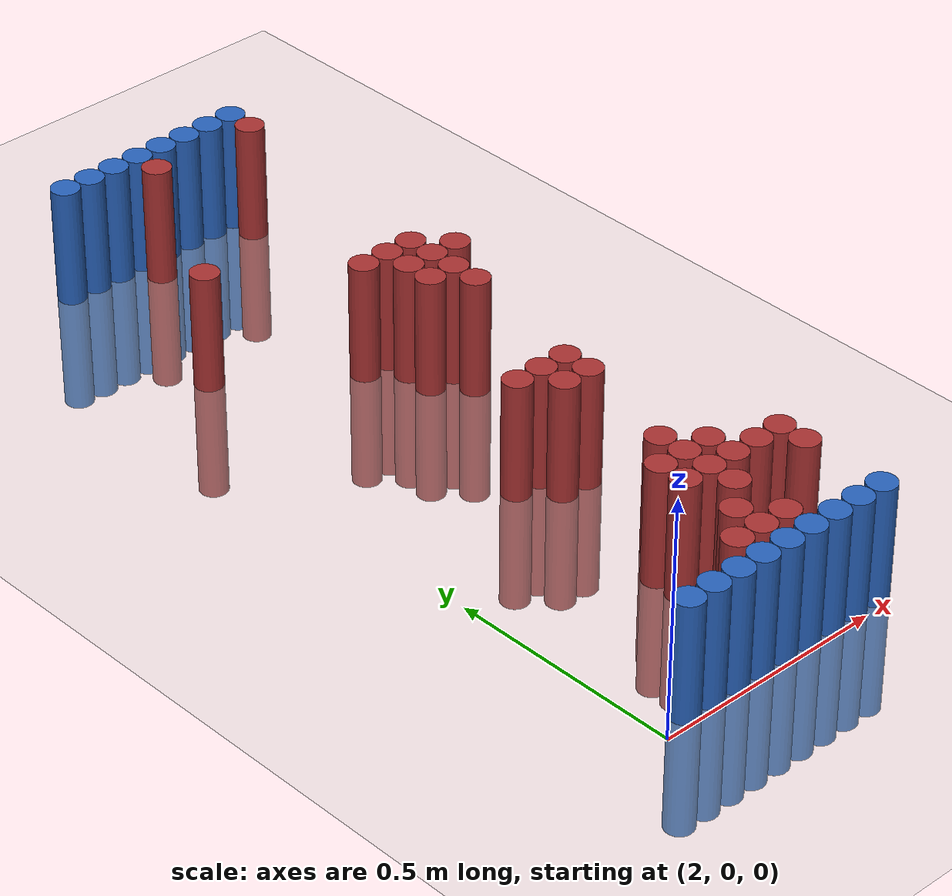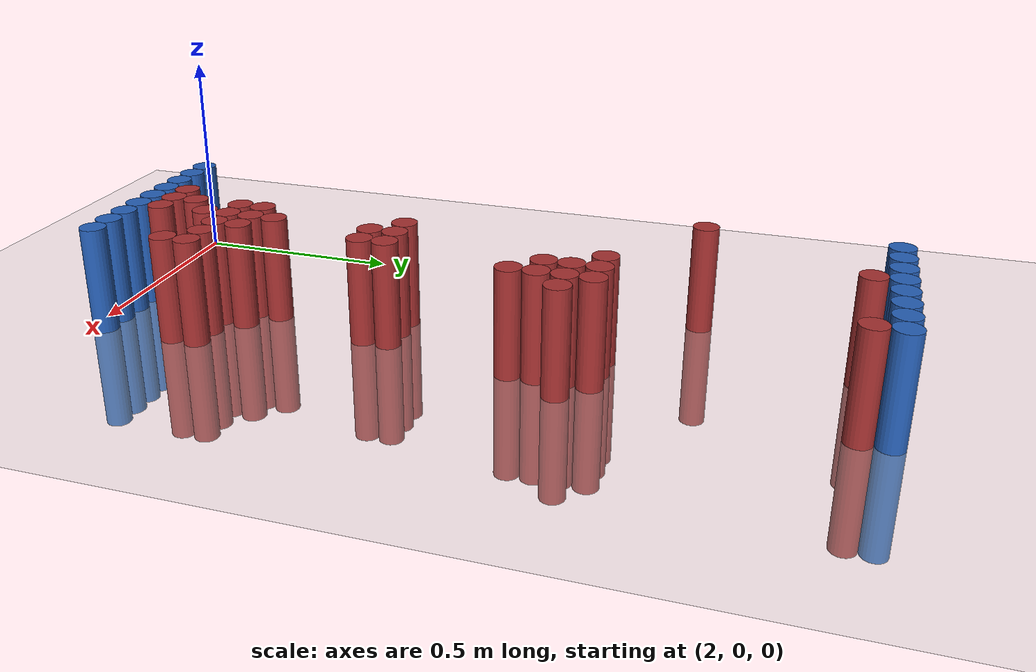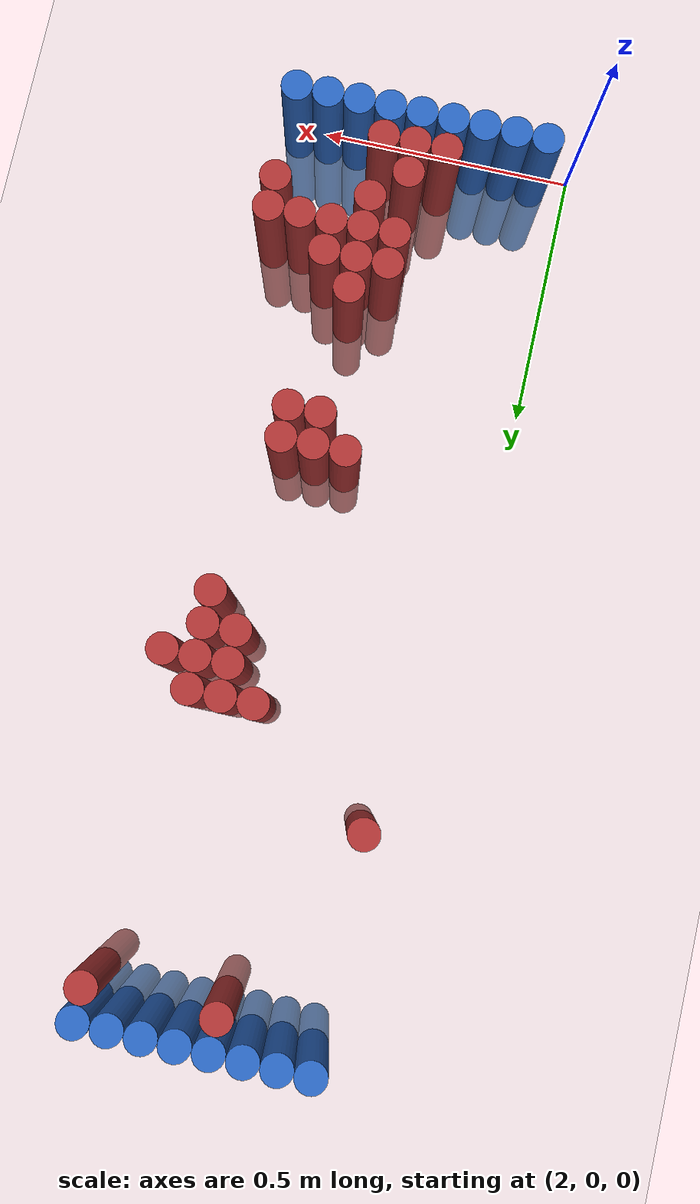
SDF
<sdf version="1.6">
 <world name="default">
  <model name="ground_plane">
   <static>1</static>
   <link name="link">
    <collision name="collision">
     <geometry><plane><normal>0 0 1</normal><size>100 100</size></plane></geometry>
     <surface><friction><ode><mu>100</mu><mu2>50</mu2></ode></friction></surface>
    </collision>
    <visual name="visual">
     <cast_shadows>0</cast_shadows>
     <geometry><plane><normal>0 0 1</normal><size>100 100</size></plane></geometry>
     <material>
      <script><uri>file://media/materials/scripts/gazebo.material</uri><name>Gazebo/Grey</name></script>
     </material>
    </visual>
   </link>
  </model>
  <model name="unit_cylinder_96">
   <static>1</static>
   <pose>2.130000 1.770000 0.000000 0.000000 0.000000 0.000000</pose>
   <link name="link">
    <inertial>
     <mass>1</mass>
     <inertia><ixx>0.145833</ixx><ixy>0</ixy><ixz>0</ixz><iyy>0.145833</iyy><iyz>0</iyz><izz>0.125</izz></inertia>
    </inertial>
    <collision name="collision">
     <geometry><cylinder><radius>0.030000</radius><length>0.5</length></cylinder></geometry>
    </collision>
    <visual name="visual">
     <geometry><cylinder><radius>0.030000</radius><length>0.5</length></cylinder></geometry>
     <material>
      <ambient>0.152000 0.379000 0.720000 1</ambient>
      <diffuse>0.152000 0.379000 0.720000 1</diffuse>
     </material>
     <material>
      <script><name>Gazebo/Grey</name><uri>file://media/materials/scripts/gazebo.material</uri></script>
     </material>
    </visual>
   </link>
  </model>
  <model name="unit_cylinder_97">
   <static>1</static>
   <pose>2.190000 1.770000 0.000000 0.000000 0.000000 0.000000</pose>
   <link name="link">
    <inertial>
     <mass>1</mass>
     <inertia><ixx>0.145833</ixx><ixy>0</ixy><ixz>0</ixz><iyy>0.145833</iyy><iyz>0</iyz><izz>0.125</izz></inertia>
    </inertial>
    <collision name="collision">
     <geometry><cylinder><radius>0.030000</radius><length>0.5</length></cylinder></geometry>
    </collision>
    <visual name="visual">
     <geometry><cylinder><radius>0.030000</radius><length>0.5</length></cylinder></geometry>
     <material>
      <ambient>0.152000 0.379000 0.720000 1</ambient>
      <diffuse>0.152000 0.379000 0.720000 1</diffuse>
     </material>
     <material>
      <script><name>Gazebo/Grey</name><uri>file://media/materials/scripts/gazebo.material</uri></script>
     </material>
    </visual>
   </link>
  </model>
  <model name="unit_cylinder_98">
   <static>1</static>
   <pose>2.250000 1.770000 0.000000 0.000000 0.000000 0.000000</pose>
   <link name="link">
    <inertial>
     <mass>1</mass>
     <inertia><ixx>0.145833</ixx><ixy>0</ixy><ixz>0</ixz><iyy>0.145833</iyy><iyz>0</iyz><izz>0.125</izz></inertia>
    </inertial>
    <collision name="collision">
     <geometry><cylinder><radius>0.030000</radius><length>0.5</length></cylinder></geometry>
    </collision>
    <visual name="visual">
     <geometry><cylinder><radius>0.030000</radius><length>0.5</length></cylinder></geometry>
     <material>
      <ambient>0.152000 0.379000 0.720000 1</ambient>
      <diffuse>0.152000 0.379000 0.720000 1</diffuse>
     </material>
     <material>
      <script><name>Gazebo/Grey</name><uri>file://media/materials/scripts/gazebo.material</uri></script>
     </material>
    </visual>
   </link>
  </model>
  <model name="unit_cylinder_99">
   <static>1</static>
   <pose>2.310000 1.770000 0.000000 0.000000 0.000000 0.000000</pose>
   <link name="link">
    <inertial>
     <mass>1</mass>
     <inertia><ixx>0.145833</ixx><ixy>0</ixy><ixz>0</ixz><iyy>0.145833</iyy><iyz>0</iyz><izz>0.125</izz></inertia>
    </inertial>
    <collision name="collision">
     <geometry><cylinder><radius>0.030000</radius><length>0.5</length></cylinder></geometry>
    </collision>
    <visual name="visual">
     <geometry><cylinder><radius>0.030000</radius><length>0.5</length></cylinder></geometry>
     <material>
      <ambient>0.152000 0.379000 0.720000 1</ambient>
      <diffuse>0.152000 0.379000 0.720000 1</diffuse>
     </material>
     <material>
      <script><name>Gazebo/Grey</name><uri>file://media/materials/scripts/gazebo.material</uri></script>
     </material>
    </visual>
   </link>
  </model>
  <model name="unit_cylinder_100">
   <static>1</static>
   <pose>2.370000 1.770000 0.000000 0.000000 0.000000 0.000000</pose>
   <link name="link">
    <inertial>
     <mass>1</mass>
     <inertia><ixx>0.145833</ixx><ixy>0</ixy><ixz>0</ixz><iyy>0.145833</iyy><iyz>0</iyz><izz>0.125</izz></inertia>
    </inertial>
    <collision name="collision">
     <geometry><cylinder><radius>0.030000</radius><length>0.5</length></cylinder></geometry>
    </collision>
    <visual name="visual">
     <geometry><cylinder><radius>0.030000</radius><length>0.5</length></cylinder></geometry>
     <material>
      <ambient>0.152000 0.379000 0.720000 1</ambient>
      <diffuse>0.152000 0.379000 0.720000 1</diffuse>
     </material>
     <material>
      <script><name>Gazebo/Grey</name><uri>file://media/materials/scripts/gazebo.material</uri></script>
     </material>
    </visual>
   </link>
  </model>
  <model name="unit_cylinder_101">
   <static>1</static>
   <pose>2.430000 1.770000 0.000000 0.000000 0.000000 0.000000</pose>
   <link name="link">
    <inertial>
     <mass>1</mass>
     <inertia><ixx>0.145833</ixx><ixy>0</ixy><ixz>0</ixz><iyy>0.145833</iyy><iyz>0</iyz><izz>0.125</izz></inertia>
    </inertial>
    <collision name="collision">
     <geometry><cylinder><radius>0.030000</radius><length>0.5</length></cylinder></geometry>
    </collision>
    <visual name="visual">
     <geometry><cylinder><radius>0.030000</radius><length>0.5</length></cylinder></geometry>
     <material>
      <ambient>0.152000 0.379000 0.720000 1</ambient>
      <diffuse>0.152000 0.379000 0.720000 1</diffuse>
     </material>
     <material>
      <script><name>Gazebo/Grey</name><uri>file://media/materials/scripts/gazebo.material</uri></script>
     </material>
    </visual>
   </link>
  </model>
  <model name="unit_cylinder_102">
   <static>1</static>
   <pose>2.490000 1.770000 0.000000 0.000000 0.000000 0.000000</pose>
   <link name="link">
    <inertial>
     <mass>1</mass>
     <inertia><ixx>0.145833</ixx><ixy>0</ixy><ixz>0</ixz><iyy>0.145833</iyy><iyz>0</iyz><izz>0.125</izz></inertia>
    </inertial>
    <collision name="collision">
     <geometry><cylinder><radius>0.030000</radius><length>0.5</length></cylinder></geometry>
    </collision>
    <visual name="visual">
     <geometry><cylinder><radius>0.030000</radius><length>0.5</length></cylinder></geometry>
     <material>
      <ambient>0.152000 0.379000 0.720000 1</ambient>
      <diffuse>0.152000 0.379000 0.720000 1</diffuse>
     </material>
     <material>
      <script><name>Gazebo/Grey</name><uri>file://media/materials/scripts/gazebo.material</uri></script>
     </material>
    </visual>
   </link>
  </model>
  <model name="unit_cylinder_103">
   <static>1</static>
   <pose>2.550000 1.770000 0.000000 0.000000 0.000000 0.000000</pose>
   <link name="link">
    <inertial>
     <mass>1</mass>
     <inertia><ixx>0.145833</ixx><ixy>0</ixy><ixz>0</ixz><iyy>0.145833</iyy><iyz>0</iyz><izz>0.125</izz></inertia>
    </inertial>
    <collision name="collision">
     <geometry><cylinder><radius>0.030000</radius><length>0.5</length></cylinder></geometry>
    </collision>
    <visual name="visual">
     <geometry><cylinder><radius>0.030000</radius><length>0.5</length></cylinder></geometry>
     <material>
      <ambient>0.152000 0.379000 0.720000 1</ambient>
      <diffuse>0.152000 0.379000 0.720000 1</diffuse>
     </material>
     <material>
      <script><name>Gazebo/Grey</name><uri>file://media/materials/scripts/gazebo.material</uri></script>
     </material>
    </visual>
   </link>
  </model>
  <model name="unit_cylinder_125">
   <static>1</static>
   <pose>2.310000 1.710000 0.000000 0.000000 0.000000 0.000000</pose>
   <link name="link">
    <inertial>
     <mass>1</mass>
     <inertia><ixx>0.145833</ixx><ixy>0</ixy><ixz>0</ixz><iyy>0.145833</iyy><iyz>0</iyz><izz>0.125</izz></inertia>
    </inertial>
    <collision name="collision">
     <geometry><cylinder><radius>0.030000</radius><length>0.5</length></cylinder></geometry>
    </collision>
    <visual name="visual">
     <geometry><cylinder><radius>0.030000</radius><length>0.5</length></cylinder></geometry>
     <material>
      <ambient>0.648000 0.192000 0.192000 1</ambient>
      <diffuse>0.648000 0.192000 0.192000 1</diffuse>
     </material>
     <material>
      <script><name>Gazebo/Grey</name><uri>file://media/materials/scripts/gazebo.material</uri></script>
     </material>
    </visual>
   </link>
  </model>
  <model name="unit_cylinder_126">
   <static>1</static>
   <pose>2.550000 1.710000 0.000000 0.000000 0.000000 0.000000</pose>
   <link name="link">
    <inertial>
     <mass>1</mass>
     <inertia><ixx>0.145833</ixx><ixy>0</ixy><ixz>0</ixz><iyy>0.145833</iyy><iyz>0</iyz><izz>0.125</izz></inertia>
    </inertial>
    <collision name="collision">
     <geometry><cylinder><radius>0.030000</radius><length>0.5</length></cylinder></geometry>
    </collision>
    <visual name="visual">
     <geometry><cylinder><radius>0.030000</radius><length>0.5</length></cylinder></geometry>
     <material>
      <ambient>0.648000 0.192000 0.192000 1</ambient>
      <diffuse>0.648000 0.192000 0.192000 1</diffuse>
     </material>
     <material>
      <script><name>Gazebo/Grey</name><uri>file://media/materials/scripts/gazebo.material</uri></script>
     </material>
    </visual>
   </link>
  </model>
  <model name="unit_cylinder_152">
   <static>1</static>
   <pose>2.130000 1.350000 0.000000 0.000000 0.000000 0.000000</pose>
   <link name="link">
    <inertial>
     <mass>1</mass>
     <inertia><ixx>0.145833</ixx><ixy>0</ixy><ixz>0</ixz><iyy>0.145833</iyy><iyz>0</iyz><izz>0.125</izz></inertia>
    </inertial>
    <collision name="collision">
     <geometry><cylinder><radius>0.030000</radius><length>0.5</length></cylinder></geometry>
    </collision>
    <visual name="visual">
     <geometry><cylinder><radius>0.030000</radius><length>0.5</length></cylinder></geometry>
     <material>
      <ambient>0.648000 0.192000 0.192000 1</ambient>
      <diffuse>0.648000 0.192000 0.192000 1</diffuse>
     </material>
     <material>
      <script><name>Gazebo/Grey</name><uri>file://media/materials/scripts/gazebo.material</uri></script>
     </material>
    </visual>
   </link>
  </model>
  <model name="unit_cylinder_154">
   <static>1</static>
   <pose>2.370000 1.170000 0.000000 0.000000 0.000000 0.000000</pose>
   <link name="link">
    <inertial>
     <mass>1</mass>
     <inertia><ixx>0.145833</ixx><ixy>0</ixy><ixz>0</ixz><iyy>0.145833</iyy><iyz>0</iyz><izz>0.125</izz></inertia>
    </inertial>
    <collision name="collision">
     <geometry><cylinder><radius>0.030000</radius><length>0.5</length></cylinder></geometry>
    </collision>
    <visual name="visual">
     <geometry><cylinder><radius>0.030000</radius><length>0.5</length></cylinder></geometry>
     <material>
      <ambient>0.648000 0.192000 0.192000 1</ambient>
      <diffuse>0.648000 0.192000 0.192000 1</diffuse>
     </material>
     <material>
      <script><name>Gazebo/Grey</name><uri>file://media/materials/scripts/gazebo.material</uri></script>
     </material>
    </visual>
   </link>
  </model>
  <model name="unit_cylinder_155">
   <static>1</static>
   <pose>2.430000 1.170000 0.000000 0.000000 0.000000 0.000000</pose>
   <link name="link">
    <inertial>
     <mass>1</mass>
     <inertia><ixx>0.145833</ixx><ixy>0</ixy><ixz>0</ixz><iyy>0.145833</iyy><iyz>0</iyz><izz>0.125</izz></inertia>
    </inertial>
    <collision name="collision">
     <geometry><cylinder><radius>0.030000</radius><length>0.5</length></cylinder></geometry>
    </collision>
    <visual name="visual">
     <geometry><cylinder><radius>0.030000</radius><length>0.5</length></cylinder></geometry>
     <material>
      <ambient>0.648000 0.192000 0.192000 1</ambient>
      <diffuse>0.648000 0.192000 0.192000 1</diffuse>
     </material>
     <material>
      <script><name>Gazebo/Grey</name><uri>file://media/materials/scripts/gazebo.material</uri></script>
     </material>
    </visual>
   </link>
  </model>
  <model name="unit_cylinder_156">
   <static>1</static>
   <pose>2.490000 1.170000 0.000000 0.000000 0.000000 0.000000</pose>
   <link name="link">
    <inertial>
     <mass>1</mass>
     <inertia><ixx>0.145833</ixx><ixy>0</ixy><ixz>0</ixz><iyy>0.145833</iyy><iyz>0</iyz><izz>0.125</izz></inertia>
    </inertial>
    <collision name="collision">
     <geometry><cylinder><radius>0.030000</radius><length>0.5</length></cylinder></geometry>
    </collision>
    <visual name="visual">
     <geometry><cylinder><radius>0.030000</radius><length>0.5</length></cylinder></geometry>
     <material>
      <ambient>0.648000 0.192000 0.192000 1</ambient>
      <diffuse>0.648000 0.192000 0.192000 1</diffuse>
     </material>
     <material>
      <script><name>Gazebo/Grey</name><uri>file://media/materials/scripts/gazebo.material</uri></script>
     </material>
    </visual>
   </link>
  </model>
  <model name="unit_cylinder_157">
   <static>1</static>
   <pose>2.430000 1.110000 0.000000 0.000000 0.000000 0.000000</pose>
   <link name="link">
    <inertial>
     <mass>1</mass>
     <inertia><ixx>0.145833</ixx><ixy>0</ixy><ixz>0</ixz><iyy>0.145833</iyy><iyz>0</iyz><izz>0.125</izz></inertia>
    </inertial>
    <collision name="collision">
     <geometry><cylinder><radius>0.030000</radius><length>0.5</length></cylinder></geometry>
    </collision>
    <visual name="visual">
     <geometry><cylinder><radius>0.030000</radius><length>0.5</length></cylinder></geometry>
     <material>
      <ambient>0.648000 0.192000 0.192000 1</ambient>
      <diffuse>0.648000 0.192000 0.192000 1</diffuse>
     </material>
     <material>
      <script><name>Gazebo/Grey</name><uri>file://media/materials/scripts/gazebo.material</uri></script>
     </material>
    </visual>
   </link>
  </model>
  <model name="unit_cylinder_158">
   <static>1</static>
   <pose>2.490000 1.110000 0.000000 0.000000 0.000000 0.000000</pose>
   <link name="link">
    <inertial>
     <mass>1</mass>
     <inertia><ixx>0.145833</ixx><ixy>0</ixy><ixz>0</ixz><iyy>0.145833</iyy><iyz>0</iyz><izz>0.125</izz></inertia>
    </inertial>
    <collision name="collision">
     <geometry><cylinder><radius>0.030000</radius><length>0.5</length></cylinder></geometry>
    </collision>
    <visual name="visual">
     <geometry><cylinder><radius>0.030000</radius><length>0.5</length></cylinder></geometry>
     <material>
      <ambient>0.648000 0.192000 0.192000 1</ambient>
      <diffuse>0.648000 0.192000 0.192000 1</diffuse>
     </material>
     <material>
      <script><name>Gazebo/Grey</name><uri>file://media/materials/scripts/gazebo.material</uri></script>
     </material>
    </visual>
   </link>
  </model>
  <model name="unit_cylinder_159">
   <static>1</static>
   <pose>2.550000 1.110000 0.000000 0.000000 0.000000 0.000000</pose>
   <link name="link">
    <inertial>
     <mass>1</mass>
     <inertia><ixx>0.145833</ixx><ixy>0</ixy><ixz>0</ixz><iyy>0.145833</iyy><iyz>0</iyz><izz>0.125</izz></inertia>
    </inertial>
    <collision name="collision">
     <geometry><cylinder><radius>0.030000</radius><length>0.5</length></cylinder></geometry>
    </collision>
    <visual name="visual">
     <geometry><cylinder><radius>0.030000</radius><length>0.5</length></cylinder></geometry>
     <material>
      <ambient>0.648000 0.192000 0.192000 1</ambient>
      <diffuse>0.648000 0.192000 0.192000 1</diffuse>
     </material>
     <material>
      <script><name>Gazebo/Grey</name><uri>file://media/materials/scripts/gazebo.material</uri></script>
     </material>
    </visual>
   </link>
  </model>
  <model name="unit_cylinder_160">
   <static>1</static>
   <pose>2.430000 1.050000 0.000000 0.000000 0.000000 0.000000</pose>
   <link name="link">
    <inertial>
     <mass>1</mass>
     <inertia><ixx>0.145833</ixx><ixy>0</ixy><ixz>0</ixz><iyy>0.145833</iyy><iyz>0</iyz><izz>0.125</izz></inertia>
    </inertial>
    <collision name="collision">
     <geometry><cylinder><radius>0.030000</radius><length>0.5</length></cylinder></geometry>
    </collision>
    <visual name="visual">
     <geometry><cylinder><radius>0.030000</radius><length>0.5</length></cylinder></geometry>
     <material>
      <ambient>0.648000 0.192000 0.192000 1</ambient>
      <diffuse>0.648000 0.192000 0.192000 1</diffuse>
     </material>
     <material>
      <script><name>Gazebo/Grey</name><uri>file://media/materials/scripts/gazebo.material</uri></script>
     </material>
    </visual>
   </link>
  </model>
  <model name="unit_cylinder_161">
   <static>1</static>
   <pose>2.490000 1.050000 0.000000 0.000000 0.000000 0.000000</pose>
   <link name="link">
    <inertial>
     <mass>1</mass>
     <inertia><ixx>0.145833</ixx><ixy>0</ixy><ixz>0</ixz><iyy>0.145833</iyy><iyz>0</iyz><izz>0.125</izz></inertia>
    </inertial>
    <collision name="collision">
     <geometry><cylinder><radius>0.030000</radius><length>0.5</length></cylinder></geometry>
    </collision>
    <visual name="visual">
     <geometry><cylinder><radius>0.030000</radius><length>0.5</length></cylinder></geometry>
     <material>
      <ambient>0.648000 0.192000 0.192000 1</ambient>
      <diffuse>0.648000 0.192000 0.192000 1</diffuse>
     </material>
     <material>
      <script><name>Gazebo/Grey</name><uri>file://media/materials/scripts/gazebo.material</uri></script>
     </material>
    </visual>
   </link>
  </model>
  <model name="unit_cylinder_163">
   <static>1</static>
   <pose>2.490000 0.990000 0.000000 0.000000 0.000000 0.000000</pose>
   <link name="link">
    <inertial>
     <mass>1</mass>
     <inertia><ixx>0.145833</ixx><ixy>0</ixy><ixz>0</ixz><iyy>0.145833</iyy><iyz>0</iyz><izz>0.125</izz></inertia>
    </inertial>
    <collision name="collision">
     <geometry><cylinder><radius>0.030000</radius><length>0.5</length></cylinder></geometry>
    </collision>
    <visual name="visual">
     <geometry><cylinder><radius>0.030000</radius><length>0.5</length></cylinder></geometry>
     <material>
      <ambient>0.648000 0.192000 0.192000 1</ambient>
      <diffuse>0.648000 0.192000 0.192000 1</diffuse>
     </material>
     <material>
      <script><name>Gazebo/Grey</name><uri>file://media/materials/scripts/gazebo.material</uri></script>
     </material>
    </visual>
   </link>
  </model>
  <model name="unit_cylinder_169">
   <static>1</static>
   <pose>2.310000 0.690000 0.000000 0.000000 0.000000 0.000000</pose>
   <link name="link">
    <inertial>
     <mass>1</mass>
     <inertia><ixx>0.145833</ixx><ixy>0</ixy><ixz>0</ixz><iyy>0.145833</iyy><iyz>0</iyz><izz>0.125</izz></inertia>
    </inertial>
    <collision name="collision">
     <geometry><cylinder><radius>0.030000</radius><length>0.5</length></cylinder></geometry>
    </collision>
    <visual name="visual">
     <geometry><cylinder><radius>0.030000</radius><length>0.5</length></cylinder></geometry>
     <material>
      <ambient>0.648000 0.192000 0.192000 1</ambient>
      <diffuse>0.648000 0.192000 0.192000 1</diffuse>
     </material>
     <material>
      <script><name>Gazebo/Grey</name><uri>file://media/materials/scripts/gazebo.material</uri></script>
     </material>
    </visual>
   </link>
  </model>
  <model name="unit_cylinder_170">
   <static>1</static>
   <pose>2.370000 0.690000 0.000000 0.000000 0.000000 0.000000</pose>
   <link name="link">
    <inertial>
     <mass>1</mass>
     <inertia><ixx>0.145833</ixx><ixy>0</ixy><ixz>0</ixz><iyy>0.145833</iyy><iyz>0</iyz><izz>0.125</izz></inertia>
    </inertial>
    <collision name="collision">
     <geometry><cylinder><radius>0.030000</radius><length>0.5</length></cylinder></geometry>
    </collision>
    <visual name="visual">
     <geometry><cylinder><radius>0.030000</radius><length>0.5</length></cylinder></geometry>
     <material>
      <ambient>0.648000 0.192000 0.192000 1</ambient>
      <diffuse>0.648000 0.192000 0.192000 1</diffuse>
     </material>
     <material>
      <script><name>Gazebo/Grey</name><uri>file://media/materials/scripts/gazebo.material</uri></script>
     </material>
    </visual>
   </link>
  </model>
  <model name="unit_cylinder_171">
   <static>1</static>
   <pose>2.430000 0.690000 0.000000 0.000000 0.000000 0.000000</pose>
   <link name="link">
    <inertial>
     <mass>1</mass>
     <inertia><ixx>0.145833</ixx><ixy>0</ixy><ixz>0</ixz><iyy>0.145833</iyy><iyz>0</iyz><izz>0.125</izz></inertia>
    </inertial>
    <collision name="collision">
     <geometry><cylinder><radius>0.030000</radius><length>0.5</length></cylinder></geometry>
    </collision>
    <visual name="visual">
     <geometry><cylinder><radius>0.030000</radius><length>0.5</length></cylinder></geometry>
     <material>
      <ambient>0.648000 0.192000 0.192000 1</ambient>
      <diffuse>0.648000 0.192000 0.192000 1</diffuse>
     </material>
     <material>
      <script><name>Gazebo/Grey</name><uri>file://media/materials/scripts/gazebo.material</uri></script>
     </material>
    </visual>
   </link>
  </model>
  <model name="unit_cylinder_174">
   <static>1</static>
   <pose>2.370000 0.630000 0.000000 0.000000 0.000000 0.000000</pose>
   <link name="link">
    <inertial>
     <mass>1</mass>
     <inertia><ixx>0.145833</ixx><ixy>0</ixy><ixz>0</ixz><iyy>0.145833</iyy><iyz>0</iyz><izz>0.125</izz></inertia>
    </inertial>
    <collision name="collision">
     <geometry><cylinder><radius>0.030000</radius><length>0.5</length></cylinder></geometry>
    </collision>
    <visual name="visual">
     <geometry><cylinder><radius>0.030000</radius><length>0.5</length></cylinder></geometry>
     <material>
      <ambient>0.648000 0.192000 0.192000 1</ambient>
      <diffuse>0.648000 0.192000 0.192000 1</diffuse>
     </material>
     <material>
      <script><name>Gazebo/Grey</name><uri>file://media/materials/scripts/gazebo.material</uri></script>
     </material>
    </visual>
   </link>
  </model>
  <model name="unit_cylinder_175">
   <static>1</static>
   <pose>2.430000 0.630000 0.000000 0.000000 0.000000 0.000000</pose>
   <link name="link">
    <inertial>
     <mass>1</mass>
     <inertia><ixx>0.145833</ixx><ixy>0</ixy><ixz>0</ixz><iyy>0.145833</iyy><iyz>0</iyz><izz>0.125</izz></inertia>
    </inertial>
    <collision name="collision">
     <geometry><cylinder><radius>0.030000</radius><length>0.5</length></cylinder></geometry>
    </collision>
    <visual name="visual">
     <geometry><cylinder><radius>0.030000</radius><length>0.5</length></cylinder></geometry>
     <material>
      <ambient>0.648000 0.192000 0.192000 1</ambient>
      <diffuse>0.648000 0.192000 0.192000 1</diffuse>
     </material>
     <material>
      <script><name>Gazebo/Grey</name><uri>file://media/materials/scripts/gazebo.material</uri></script>
     </material>
    </visual>
   </link>
  </model>
  <model name="unit_cylinder_181">
   <static>1</static>
   <pose>2.370000 0.390000 0.000000 0.000000 0.000000 0.000000</pose>
   <link name="link">
    <inertial>
     <mass>1</mass>
     <inertia><ixx>0.145833</ixx><ixy>0</ixy><ixz>0</ixz><iyy>0.145833</iyy><iyz>0</iyz><izz>0.125</izz></inertia>
    </inertial>
    <collision name="collision">
     <geometry><cylinder><radius>0.030000</radius><length>0.5</length></cylinder></geometry>
    </collision>
    <visual name="visual">
     <geometry><cylinder><radius>0.030000</radius><length>0.5</length></cylinder></geometry>
     <material>
      <ambient>0.648000 0.192000 0.192000 1</ambient>
      <diffuse>0.648000 0.192000 0.192000 1</diffuse>
     </material>
     <material>
      <script><name>Gazebo/Grey</name><uri>file://media/materials/scripts/gazebo.material</uri></script>
     </material>
    </visual>
   </link>
  </model>
  <model name="unit_cylinder_189">
   <static>1</static>
   <pose>2.310000 0.330000 0.000000 0.000000 0.000000 0.000000</pose>
   <link name="link">
    <inertial>
     <mass>1</mass>
     <inertia><ixx>0.145833</ixx><ixy>0</ixy><ixz>0</ixz><iyy>0.145833</iyy><iyz>0</iyz><izz>0.125</izz></inertia>
    </inertial>
    <collision name="collision">
     <geometry><cylinder><radius>0.030000</radius><length>0.5</length></cylinder></geometry>
    </collision>
    <visual name="visual">
     <geometry><cylinder><radius>0.030000</radius><length>0.5</length></cylinder></geometry>
     <material>
      <ambient>0.648000 0.192000 0.192000 1</ambient>
      <diffuse>0.648000 0.192000 0.192000 1</diffuse>
     </material>
     <material>
      <script><name>Gazebo/Grey</name><uri>file://media/materials/scripts/gazebo.material</uri></script>
     </material>
    </visual>
   </link>
  </model>
  <model name="unit_cylinder_190">
   <static>1</static>
   <pose>2.370000 0.330000 0.000000 0.000000 0.000000 0.000000</pose>
   <link name="link">
    <inertial>
     <mass>1</mass>
     <inertia><ixx>0.145833</ixx><ixy>0</ixy><ixz>0</ixz><iyy>0.145833</iyy><iyz>0</iyz><izz>0.125</izz></inertia>
    </inertial>
    <collision name="collision">
     <geometry><cylinder><radius>0.030000</radius><length>0.5</length></cylinder></geometry>
    </collision>
    <visual name="visual">
     <geometry><cylinder><radius>0.030000</radius><length>0.5</length></cylinder></geometry>
     <material>
      <ambient>0.648000 0.192000 0.192000 1</ambient>
      <diffuse>0.648000 0.192000 0.192000 1</diffuse>
     </material>
     <material>
      <script><name>Gazebo/Grey</name><uri>file://media/materials/scripts/gazebo.material</uri></script>
     </material>
    </visual>
   </link>
  </model>
  <model name="unit_cylinder_191">
   <static>1</static>
   <pose>2.430000 0.330000 0.000000 0.000000 0.000000 0.000000</pose>
   <link name="link">
    <inertial>
     <mass>1</mass>
     <inertia><ixx>0.145833</ixx><ixy>0</ixy><ixz>0</ixz><iyy>0.145833</iyy><iyz>0</iyz><izz>0.125</izz></inertia>
    </inertial>
    <collision name="collision">
     <geometry><cylinder><radius>0.030000</radius><length>0.5</length></cylinder></geometry>
    </collision>
    <visual name="visual">
     <geometry><cylinder><radius>0.030000</radius><length>0.5</length></cylinder></geometry>
     <material>
      <ambient>0.648000 0.192000 0.192000 1</ambient>
      <diffuse>0.648000 0.192000 0.192000 1</diffuse>
     </material>
     <material>
      <script><name>Gazebo/Grey</name><uri>file://media/materials/scripts/gazebo.material</uri></script>
     </material>
    </visual>
   </link>
  </model>
  <model name="unit_cylinder_196">
   <static>1</static>
   <pose>2.310000 0.270000 0.000000 0.000000 0.000000 0.000000</pose>
   <link name="link">
    <inertial>
     <mass>1</mass>
     <inertia><ixx>0.145833</ixx><ixy>0</ixy><ixz>0</ixz><iyy>0.145833</iyy><iyz>0</iyz><izz>0.125</izz></inertia>
    </inertial>
    <collision name="collision">
     <geometry><cylinder><radius>0.030000</radius><length>0.5</length></cylinder></geometry>
    </collision>
    <visual name="visual">
     <geometry><cylinder><radius>0.030000</radius><length>0.5</length></cylinder></geometry>
     <material>
      <ambient>0.648000 0.192000 0.192000 1</ambient>
      <diffuse>0.648000 0.192000 0.192000 1</diffuse>
     </material>
     <material>
      <script><name>Gazebo/Grey</name><uri>file://media/materials/scripts/gazebo.material</uri></script>
     </material>
    </visual>
   </link>
  </model>
  <model name="unit_cylinder_197">
   <static>1</static>
   <pose>2.370000 0.270000 0.000000 0.000000 0.000000 0.000000</pose>
   <link name="link">
    <inertial>
     <mass>1</mass>
     <inertia><ixx>0.145833</ixx><ixy>0</ixy><ixz>0</ixz><iyy>0.145833</iyy><iyz>0</iyz><izz>0.125</izz></inertia>
    </inertial>
    <collision name="collision">
     <geometry><cylinder><radius>0.030000</radius><length>0.5</length></cylinder></geometry>
    </collision>
    <visual name="visual">
     <geometry><cylinder><radius>0.030000</radius><length>0.5</length></cylinder></geometry>
     <material>
      <ambient>0.648000 0.192000 0.192000 1</ambient>
      <diffuse>0.648000 0.192000 0.192000 1</diffuse>
     </material>
     <material>
      <script><name>Gazebo/Grey</name><uri>file://media/materials/scripts/gazebo.material</uri></script>
     </material>
    </visual>
   </link>
  </model>
  <model name="unit_cylinder_198">
   <static>1</static>
   <pose>2.430000 0.270000 0.000000 0.000000 0.000000 0.000000</pose>
   <link name="link">
    <inertial>
     <mass>1</mass>
     <inertia><ixx>0.145833</ixx><ixy>0</ixy><ixz>0</ixz><iyy>0.145833</iyy><iyz>0</iyz><izz>0.125</izz></inertia>
    </inertial>
    <collision name="collision">
     <geometry><cylinder><radius>0.030000</radius><length>0.5</length></cylinder></geometry>
    </collision>
    <visual name="visual">
     <geometry><cylinder><radius>0.030000</radius><length>0.5</length></cylinder></geometry>
     <material>
      <ambient>0.648000 0.192000 0.192000 1</ambient>
      <diffuse>0.648000 0.192000 0.192000 1</diffuse>
     </material>
     <material>
      <script><name>Gazebo/Grey</name><uri>file://media/materials/scripts/gazebo.material</uri></script>
     </material>
    </visual>
   </link>
  </model>
  <model name="unit_cylinder_199">
   <static>1</static>
   <pose>2.490000 0.270000 0.000000 0.000000 0.000000 0.000000</pose>
   <link name="link">
    <inertial>
     <mass>1</mass>
     <inertia><ixx>0.145833</ixx><ixy>0</ixy><ixz>0</ixz><iyy>0.145833</iyy><iyz>0</iyz><izz>0.125</izz></inertia>
    </inertial>
    <collision name="collision">
     <geometry><cylinder><radius>0.030000</radius><length>0.5</length></cylinder></geometry>
    </collision>
    <visual name="visual">
     <geometry><cylinder><radius>0.030000</radius><length>0.5</length></cylinder></geometry>
     <material>
      <ambient>0.648000 0.192000 0.192000 1</ambient>
      <diffuse>0.648000 0.192000 0.192000 1</diffuse>
     </material>
     <material>
      <script><name>Gazebo/Grey</name><uri>file://media/materials/scripts/gazebo.material</uri></script>
     </material>
    </visual>
   </link>
  </model>
  <model name="unit_cylinder_200">
   <static>1</static>
   <pose>2.550000 0.270000 0.000000 0.000000 0.000000 0.000000</pose>
   <link name="link">
    <inertial>
     <mass>1</mass>
     <inertia><ixx>0.145833</ixx><ixy>0</ixy><ixz>0</ixz><iyy>0.145833</iyy><iyz>0</iyz><izz>0.125</izz></inertia>
    </inertial>
    <collision name="collision">
     <geometry><cylinder><radius>0.030000</radius><length>0.5</length></cylinder></geometry>
    </collision>
    <visual name="visual">
     <geometry><cylinder><radius>0.030000</radius><length>0.5</length></cylinder></geometry>
     <material>
      <ambient>0.648000 0.192000 0.192000 1</ambient>
      <diffuse>0.648000 0.192000 0.192000 1</diffuse>
     </material>
     <material>
      <script><name>Gazebo/Grey</name><uri>file://media/materials/scripts/gazebo.material</uri></script>
     </material>
    </visual>
   </link>
  </model>
  <model name="unit_cylinder_204">
   <static>1</static>
   <pose>2.370000 0.210000 0.000000 0.000000 0.000000 0.000000</pose>
   <link name="link">
    <inertial>
     <mass>1</mass>
     <inertia><ixx>0.145833</ixx><ixy>0</ixy><ixz>0</ixz><iyy>0.145833</iyy><iyz>0</iyz><izz>0.125</izz></inertia>
    </inertial>
    <collision name="collision">
     <geometry><cylinder><radius>0.030000</radius><length>0.5</length></cylinder></geometry>
    </collision>
    <visual name="visual">
     <geometry><cylinder><radius>0.030000</radius><length>0.5</length></cylinder></geometry>
     <material>
      <ambient>0.648000 0.192000 0.192000 1</ambient>
      <diffuse>0.648000 0.192000 0.192000 1</diffuse>
     </material>
     <material>
      <script><name>Gazebo/Grey</name><uri>file://media/materials/scripts/gazebo.material</uri></script>
     </material>
    </visual>
   </link>
  </model>
  <model name="unit_cylinder_205">
   <static>1</static>
   <pose>2.550000 0.210000 0.000000 0.000000 0.000000 0.000000</pose>
   <link name="link">
    <inertial>
     <mass>1</mass>
     <inertia><ixx>0.145833</ixx><ixy>0</ixy><ixz>0</ixz><iyy>0.145833</iyy><iyz>0</iyz><izz>0.125</izz></inertia>
    </inertial>
    <collision name="collision">
     <geometry><cylinder><radius>0.030000</radius><length>0.5</length></cylinder></geometry>
    </collision>
    <visual name="visual">
     <geometry><cylinder><radius>0.030000</radius><length>0.5</length></cylinder></geometry>
     <material>
      <ambient>0.648000 0.192000 0.192000 1</ambient>
      <diffuse>0.648000 0.192000 0.192000 1</diffuse>
     </material>
     <material>
      <script><name>Gazebo/Grey</name><uri>file://media/materials/scripts/gazebo.material</uri></script>
     </material>
    </visual>
   </link>
  </model>
  <model name="unit_cylinder_206">
   <static>1</static>
   <pose>2.310000 0.150000 0.000000 0.000000 0.000000 0.000000</pose>
   <link name="link">
    <inertial>
     <mass>1</mass>
     <inertia><ixx>0.145833</ixx><ixy>0</ixy><ixz>0</ixz><iyy>0.145833</iyy><iyz>0</iyz><izz>0.125</izz></inertia>
    </inertial>
    <collision name="collision">
     <geometry><cylinder><radius>0.030000</radius><length>0.5</length></cylinder></geometry>
    </collision>
    <visual name="visual">
     <geometry><cylinder><radius>0.030000</radius><length>0.5</length></cylinder></geometry>
     <material>
      <ambient>0.648000 0.192000 0.192000 1</ambient>
      <diffuse>0.648000 0.192000 0.192000 1</diffuse>
     </material>
     <material>
      <script><name>Gazebo/Grey</name><uri>file://media/materials/scripts/gazebo.material</uri></script>
     </material>
    </visual>
   </link>
  </model>
  <model name="unit_cylinder_207">
   <static>1</static>
   <pose>2.250000 0.090000 0.000000 0.000000 0.000000 0.000000</pose>
   <link name="link">
    <inertial>
     <mass>1</mass>
     <inertia><ixx>0.145833</ixx><ixy>0</ixy><ixz>0</ixz><iyy>0.145833</iyy><iyz>0</iyz><izz>0.125</izz></inertia>
    </inertial>
    <collision name="collision">
     <geometry><cylinder><radius>0.030000</radius><length>0.5</length></cylinder></geometry>
    </collision>
    <visual name="visual">
     <geometry><cylinder><radius>0.030000</radius><length>0.5</length></cylinder></geometry>
     <material>
      <ambient>0.648000 0.192000 0.192000 1</ambient>
      <diffuse>0.648000 0.192000 0.192000 1</diffuse>
     </material>
     <material>
      <script><name>Gazebo/Grey</name><uri>file://media/materials/scripts/gazebo.material</uri></script>
     </material>
    </visual>
   </link>
  </model>
  <model name="unit_cylinder_208">
   <static>1</static>
   <pose>2.310000 0.090000 0.000000 0.000000 0.000000 0.000000</pose>
   <link name="link">
    <inertial>
     <mass>1</mass>
     <inertia><ixx>0.145833</ixx><ixy>0</ixy><ixz>0</ixz><iyy>0.145833</iyy><iyz>0</iyz><izz>0.125</izz></inertia>
    </inertial>
    <collision name="collision">
     <geometry><cylinder><radius>0.030000</radius><length>0.5</length></cylinder></geometry>
    </collision>
    <visual name="visual">
     <geometry><cylinder><radius>0.030000</radius><length>0.5</length></cylinder></geometry>
     <material>
      <ambient>0.648000 0.192000 0.192000 1</ambient>
      <diffuse>0.648000 0.192000 0.192000 1</diffuse>
     </material>
     <material>
      <script><name>Gazebo/Grey</name><uri>file://media/materials/scripts/gazebo.material</uri></script>
     </material>
    </visual>
   </link>
  </model>
  <model name="unit_cylinder_209">
   <static>1</static>
   <pose>2.370000 0.090000 0.000000 0.000000 0.000000 0.000000</pose>
   <link name="link">
    <inertial>
     <mass>1</mass>
     <inertia><ixx>0.145833</ixx><ixy>0</ixy><ixz>0</ixz><iyy>0.145833</iyy><iyz>0</iyz><izz>0.125</izz></inertia>
    </inertial>
    <collision name="collision">
     <geometry><cylinder><radius>0.030000</radius><length>0.5</length></cylinder></geometry>
    </collision>
    <visual name="visual">
     <geometry><cylinder><radius>0.030000</radius><length>0.5</length></cylinder></geometry>
     <material>
      <ambient>0.648000 0.192000 0.192000 1</ambient>
      <diffuse>0.648000 0.192000 0.192000 1</diffuse>
     </material>
     <material>
      <script><name>Gazebo/Grey</name><uri>file://media/materials/scripts/gazebo.material</uri></script>
     </material>
    </visual>
   </link>
  </model>
  <model name="unit_cylinder_215">
   <static>1</static>
   <pose>2.070000 0.030000 0.000000 0.000000 0.000000 0.000000</pose>
   <link name="link">
    <inertial>
     <mass>1</mass>
     <inertia><ixx>0.145833</ixx><ixy>0</ixy><ixz>0</ixz><iyy>0.145833</iyy><iyz>0</iyz><izz>0.125</izz></inertia>
    </inertial>
    <collision name="collision">
     <geometry><cylinder><radius>0.030000</radius><length>0.5</length></cylinder></geometry>
    </collision>
    <visual name="visual">
     <geometry><cylinder><radius>0.030000</radius><length>0.5</length></cylinder></geometry>
     <material>
      <ambient>0.152000 0.379000 0.720000 1</ambient>
      <diffuse>0.152000 0.379000 0.720000 1</diffuse>
     </material>
     <material>
      <script><name>Gazebo/Grey</name><uri>file://media/materials/scripts/gazebo.material</uri></script>
     </material>
    </visual>
   </link>
  </model>
  <model name="unit_cylinder_216">
   <static>1</static>
   <pose>2.130000 0.030000 0.000000 0.000000 0.000000 0.000000</pose>
   <link name="link">
    <inertial>
     <mass>1</mass>
     <inertia><ixx>0.145833</ixx><ixy>0</ixy><ixz>0</ixz><iyy>0.145833</iyy><iyz>0</iyz><izz>0.125</izz></inertia>
    </inertial>
    <collision name="collision">
     <geometry><cylinder><radius>0.030000</radius><length>0.5</length></cylinder></geometry>
    </collision>
    <visual name="visual">
     <geometry><cylinder><radius>0.030000</radius><length>0.5</length></cylinder></geometry>
     <material>
      <ambient>0.152000 0.379000 0.720000 1</ambient>
      <diffuse>0.152000 0.379000 0.720000 1</diffuse>
     </material>
     <material>
      <script><name>Gazebo/Grey</name><uri>file://media/materials/scripts/gazebo.material</uri></script>
     </material>
    </visual>
   </link>
  </model>
  <model name="unit_cylinder_217">
   <static>1</static>
   <pose>2.190000 0.030000 0.000000 0.000000 0.000000 0.000000</pose>
   <link name="link">
    <inertial>
     <mass>1</mass>
     <inertia><ixx>0.145833</ixx><ixy>0</ixy><ixz>0</ixz><iyy>0.145833</iyy><iyz>0</iyz><izz>0.125</izz></inertia>
    </inertial>
    <collision name="collision">
     <geometry><cylinder><radius>0.030000</radius><length>0.5</length></cylinder></geometry>
    </collision>
    <visual name="visual">
     <geometry><cylinder><radius>0.030000</radius><length>0.5</length></cylinder></geometry>
     <material>
      <ambient>0.152000 0.379000 0.720000 1</ambient>
      <diffuse>0.152000 0.379000 0.720000 1</diffuse>
     </material>
     <material>
      <script><name>Gazebo/Grey</name><uri>file://media/materials/scripts/gazebo.material</uri></script>
     </material>
    </visual>
   </link>
  </model>
  <model name="unit_cylinder_218">
   <static>1</static>
   <pose>2.250000 0.030000 0.000000 0.000000 0.000000 0.000000</pose>
   <link name="link">
    <inertial>
     <mass>1</mass>
     <inertia><ixx>0.145833</ixx><ixy>0</ixy><ixz>0</ixz><iyy>0.145833</iyy><iyz>0</iyz><izz>0.125</izz></inertia>
    </inertial>
    <collision name="collision">
     <geometry><cylinder><radius>0.030000</radius><length>0.5</length></cylinder></geometry>
    </collision>
    <visual name="visual">
     <geometry><cylinder><radius>0.030000</radius><length>0.5</length></cylinder></geometry>
     <material>
      <ambient>0.152000 0.379000 0.720000 1</ambient>
      <diffuse>0.152000 0.379000 0.720000 1</diffuse>
     </material>
     <material>
      <script><name>Gazebo/Grey</name><uri>file://media/materials/scripts/gazebo.material</uri></script>
     </material>
    </visual>
   </link>
  </model>
  <model name="unit_cylinder_219">
   <static>1</static>
   <pose>2.310000 0.030000 0.000000 0.000000 0.000000 0.000000</pose>
   <link name="link">
    <inertial>
     <mass>1</mass>
     <inertia><ixx>0.145833</ixx><ixy>0</ixy><ixz>0</ixz><iyy>0.145833</iyy><iyz>0</iyz><izz>0.125</izz></inertia>
    </inertial>
    <collision name="collision">
     <geometry><cylinder><radius>0.030000</radius><length>0.5</length></cylinder></geometry>
    </collision>
    <visual name="visual">
     <geometry><cylinder><radius>0.030000</radius><length>0.5</length></cylinder></geometry>
     <material>
      <ambient>0.152000 0.379000 0.720000 1</ambient>
      <diffuse>0.152000 0.379000 0.720000 1</diffuse>
     </material>
     <material>
      <script><name>Gazebo/Grey</name><uri>file://media/materials/scripts/gazebo.material</uri></script>
     </material>
    </visual>
   </link>
  </model>
  <model name="unit_cylinder_220">
   <static>1</static>
   <pose>2.370000 0.030000 0.000000 0.000000 0.000000 0.000000</pose>
   <link name="link">
    <inertial>
     <mass>1</mass>
     <inertia><ixx>0.145833</ixx><ixy>0</ixy><ixz>0</ixz><iyy>0.145833</iyy><iyz>0</iyz><izz>0.125</izz></inertia>
    </inertial>
    <collision name="collision">
     <geometry><cylinder><radius>0.030000</radius><length>0.5</length></cylinder></geometry>
    </collision>
    <visual name="visual">
     <geometry><cylinder><radius>0.030000</radius><length>0.5</length></cylinder></geometry>
     <material>
      <ambient>0.152000 0.379000 0.720000 1</ambient>
      <diffuse>0.152000 0.379000 0.720000 1</diffuse>
     </material>
     <material>
      <script><name>Gazebo/Grey</name><uri>file://media/materials/scripts/gazebo.material</uri></script>
     </material>
    </visual>
   </link>
  </model>
  <model name="unit_cylinder_221">
   <static>1</static>
   <pose>2.430000 0.030000 0.000000 0.000000 0.000000 0.000000</pose>
   <link name="link">
    <inertial>
     <mass>1</mass>
     <inertia><ixx>0.145833</ixx><ixy>0</ixy><ixz>0</ixz><iyy>0.145833</iyy><iyz>0</iyz><izz>0.125</izz></inertia>
    </inertial>
    <collision name="collision">
     <geometry><cylinder><radius>0.030000</radius><length>0.5</length></cylinder></geometry>
    </collision>
    <visual name="visual">
     <geometry><cylinder><radius>0.030000</radius><length>0.5</length></cylinder></geometry>
     <material>
      <ambient>0.152000 0.379000 0.720000 1</ambient>
      <diffuse>0.152000 0.379000 0.720000 1</diffuse>
     </material>
     <material>
      <script><name>Gazebo/Grey</name><uri>file://media/materials/scripts/gazebo.material</uri></script>
     </material>
    </visual>
   </link>
  </model>
  <model name="unit_cylinder_222">
   <static>1</static>
   <pose>2.490000 0.030000 0.000000 0.000000 0.000000 0.000000</pose>
   <link name="link">
    <inertial>
     <mass>1</mass>
     <inertia><ixx>0.145833</ixx><ixy>0</ixy><ixz>0</ixz><iyy>0.145833</iyy><iyz>0</iyz><izz>0.125</izz></inertia>
    </inertial>
    <collision name="collision">
     <geometry><cylinder><radius>0.030000</radius><length>0.5</length></cylinder></geometry>
    </collision>
    <visual name="visual">
     <geometry><cylinder><radius>0.030000</radius><length>0.5</length></cylinder></geometry>
     <material>
      <ambient>0.152000 0.379000 0.720000 1</ambient>
      <diffuse>0.152000 0.379000 0.720000 1</diffuse>
     </material>
     <material>
      <script><name>Gazebo/Grey</name><uri>file://media/materials/scripts/gazebo.material</uri></script>
     </material>
    </visual>
   </link>
  </model>
  <model name="unit_cylinder_223">
   <static>1</static>
   <pose>2.550000 0.030000 0.000000 0.000000 0.000000 0.000000</pose>
   <link name="link">
    <inertial>
     <mass>1</mass>
     <inertia><ixx>0.145833</ixx><ixy>0</ixy><ixz>0</ixz><iyy>0.145833</iyy><iyz>0</iyz><izz>0.125</izz></inertia>
    </inertial>
    <collision name="collision">
     <geometry><cylinder><radius>0.030000</radius><length>0.5</length></cylinder></geometry>
    </collision>
    <visual name="visual">
     <geometry><cylinder><radius>0.030000</radius><length>0.5</length></cylinder></geometry>
     <material>
      <ambient>0.152000 0.379000 0.720000 1</ambient>
      <diffuse>0.152000 0.379000 0.720000 1</diffuse>
     </material>
     <material>
      <script><name>Gazebo/Grey</name><uri>file://media/materials/scripts/gazebo.material</uri></script>
     </material>
    </visual>
   </link>
  </model>
 </world>
</sdf>
